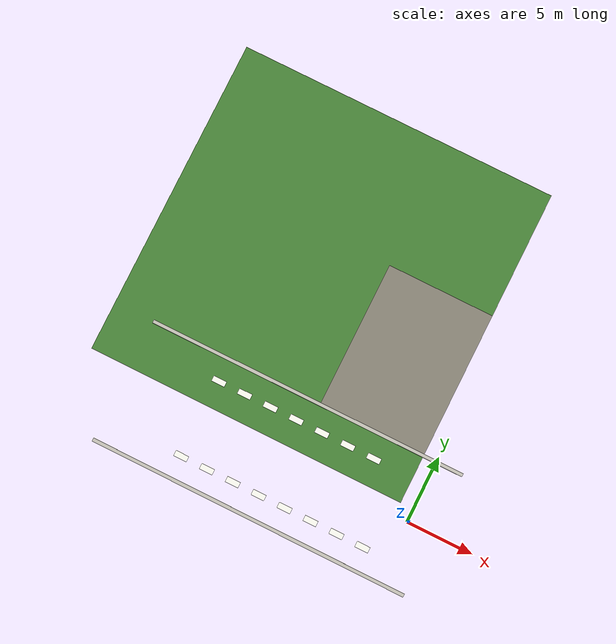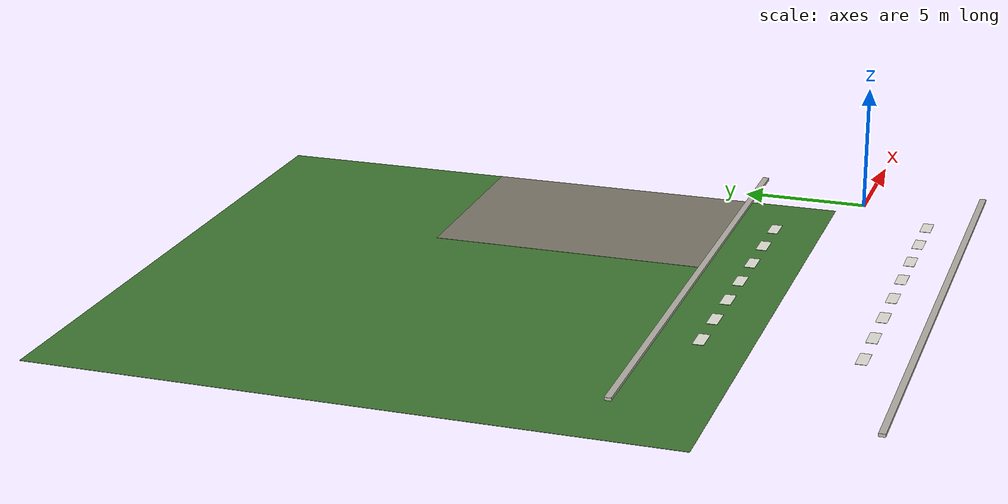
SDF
<sdf version="1.8">
 <world name="test_city">
  <model name="northwest_residential_lawn">
   <static>1</static>
   <pose>-13.000 13.000 0.003 0 0 0.000000</pose>
   <link name="link">
    <visual name="visual">
     <cast_shadows>0</cast_shadows>
     <geometry><box><size>24.000 24.000 0.012</size></box></geometry>
     <material>
      <ambient>0.26 0.48 0.20 1</ambient>
      <diffuse>0.26 0.48 0.20 1</diffuse>
      <specular>0.08 0.08 0.08 1</specular>
      <pbr>
       <metal>
        <albedo_map>model://urban_surface/materials/textures/grass_lawn.png</albedo_map>
        <roughness>0.95</roughness>
        <metalness>0.0</metalness>
       </metal>
      </pbr>
     </material>
    </visual>
   </link>
  </model>
  <model name="west_driveway_pavers">
   <static>1</static>
   <pose>-5.000 10.000 0.007 0 0 0.000000</pose>
   <link name="link">
    <visual name="visual">
     <cast_shadows>0</cast_shadows>
     <geometry><box><size>8.000 11.000 0.012</size></box></geometry>
     <material>
      <ambient>0.50 0.48 0.43 1</ambient>
      <diffuse>0.50 0.48 0.43 1</diffuse>
      <specular>0.08 0.08 0.08 1</specular>
      <pbr>
       <metal>
        <albedo_map>model://urban_surface/materials/textures/driveway_pavers.png</albedo_map>
        <roughness>0.88</roughness>
        <metalness>0.0</metalness>
       </metal>
      </pbr>
     </material>
    </visual>
   </link>
  </model>
  <model name="curb_n_ew_left">
   <static>1</static>
   <pose>-10.000 4.600 0.060 0 0 0.000000</pose>
   <link name="link">
    <collision name="collision"><geometry><box><size>24.000 0.250 0.120</size></box></geometry></collision>
    <visual name="visual">
     <cast_shadows>0</cast_shadows>
     <geometry><box><size>24.000 0.250 0.120</size></box></geometry>
     <material>
      <ambient>0.72 0.71 0.67 1</ambient>
      <diffuse>0.72 0.71 0.67 1</diffuse>
      <specular>0.08 0.08 0.08 1</specular>
      <pbr>
       <metal>
        <albedo_map>model://urban_surface/materials/textures/curb_concrete.png</albedo_map>
        <roughness>0.8</roughness>
        <metalness>0.0</metalness>
       </metal>
      </pbr>
     </material>
    </visual>
   </link>
  </model>
  <model name="curb_s_ew_left">
   <static>1</static>
   <pose>-10.000 -4.600 0.060 0 0 0.000000</pose>
   <link name="link">
    <collision name="collision"><geometry><box><size>24.000 0.250 0.120</size></box></geometry></collision>
    <visual name="visual">
     <cast_shadows>0</cast_shadows>
     <geometry><box><size>24.000 0.250 0.120</size></box></geometry>
     <material>
      <ambient>0.72 0.71 0.67 1</ambient>
      <diffuse>0.72 0.71 0.67 1</diffuse>
      <specular>0.08 0.08 0.08 1</specular>
      <pbr>
       <metal>
        <albedo_map>model://urban_surface/materials/textures/curb_concrete.png</albedo_map>
        <roughness>0.8</roughness>
        <metalness>0.0</metalness>
       </metal>
      </pbr>
     </material>
    </visual>
   </link>
  </model>
  <model name="west_crosswalk_stripe_0">
   <static>1</static>
   <pose>-16.000 -2.900 0.040 0 0 0.000000</pose>
   <link name="link">
    <visual name="visual">
     <cast_shadows>0</cast_shadows>
     <geometry><box><size>1.000 0.420 0.012</size></box></geometry>
     <material>
      <ambient>0.92 0.92 0.88 1</ambient>
      <diffuse>0.92 0.92 0.88 1</diffuse>
      <specular>0.05 0.05 0.05 1</specular>
      <pbr><metal><roughness>0.8</roughness><metalness>0</metalness></metal></pbr>
     </material>
    </visual>
   </link>
  </model>
  <model name="west_crosswalk_stripe_n_0">
   <static>1</static>
   <pose>-16.000 2.900 0.040 0 0 0.000000</pose>
   <link name="link">
    <visual name="visual">
     <cast_shadows>0</cast_shadows>
     <geometry><box><size>1.000 0.420 0.012</size></box></geometry>
     <material>
      <ambient>0.92 0.92 0.88 1</ambient>
      <diffuse>0.92 0.92 0.88 1</diffuse>
      <specular>0.05 0.05 0.05 1</specular>
      <pbr><metal><roughness>0.8</roughness><metalness>0</metalness></metal></pbr>
     </material>
    </visual>
   </link>
  </model>
  <model name="west_crosswalk_stripe_1">
   <static>1</static>
   <pose>-14.000 -2.900 0.040 0 0 0.000000</pose>
   <link name="link">
    <visual name="visual">
     <cast_shadows>0</cast_shadows>
     <geometry><box><size>1.000 0.420 0.012</size></box></geometry>
     <material>
      <ambient>0.92 0.92 0.88 1</ambient>
      <diffuse>0.92 0.92 0.88 1</diffuse>
      <specular>0.05 0.05 0.05 1</specular>
      <pbr><metal><roughness>0.8</roughness><metalness>0</metalness></metal></pbr>
     </material>
    </visual>
   </link>
  </model>
  <model name="west_crosswalk_stripe_n_1">
   <static>1</static>
   <pose>-14.000 2.900 0.040 0 0 0.000000</pose>
   <link name="link">
    <visual name="visual">
     <cast_shadows>0</cast_shadows>
     <geometry><box><size>1.000 0.420 0.012</size></box></geometry>
     <material>
      <ambient>0.92 0.92 0.88 1</ambient>
      <diffuse>0.92 0.92 0.88 1</diffuse>
      <specular>0.05 0.05 0.05 1</specular>
      <pbr><metal><roughness>0.8</roughness><metalness>0</metalness></metal></pbr>
     </material>
    </visual>
   </link>
  </model>
  <model name="west_crosswalk_stripe_2">
   <static>1</static>
   <pose>-12.000 -2.900 0.040 0 0 0.000000</pose>
   <link name="link">
    <visual name="visual">
     <cast_shadows>0</cast_shadows>
     <geometry><box><size>1.000 0.420 0.012</size></box></geometry>
     <material>
      <ambient>0.92 0.92 0.88 1</ambient>
      <diffuse>0.92 0.92 0.88 1</diffuse>
      <specular>0.05 0.05 0.05 1</specular>
      <pbr><metal><roughness>0.8</roughness><metalness>0</metalness></metal></pbr>
     </material>
    </visual>
   </link>
  </model>
  <model name="west_crosswalk_stripe_n_2">
   <static>1</static>
   <pose>-12.000 2.900 0.040 0 0 0.000000</pose>
   <link name="link">
    <visual name="visual">
     <cast_shadows>0</cast_shadows>
     <geometry><box><size>1.000 0.420 0.012</size></box></geometry>
     <material>
      <ambient>0.92 0.92 0.88 1</ambient>
      <diffuse>0.92 0.92 0.88 1</diffuse>
      <specular>0.05 0.05 0.05 1</specular>
      <pbr><metal><roughness>0.8</roughness><metalness>0</metalness></metal></pbr>
     </material>
    </visual>
   </link>
  </model>
  <model name="west_crosswalk_stripe_3">
   <static>1</static>
   <pose>-10.000 -2.900 0.040 0 0 0.000000</pose>
   <link name="link">
    <visual name="visual">
     <cast_shadows>0</cast_shadows>
     <geometry><box><size>1.000 0.420 0.012</size></box></geometry>
     <material>
      <ambient>0.92 0.92 0.88 1</ambient>
      <diffuse>0.92 0.92 0.88 1</diffuse>
      <specular>0.05 0.05 0.05 1</specular>
      <pbr><metal><roughness>0.8</roughness><metalness>0</metalness></metal></pbr>
     </material>
    </visual>
   </link>
  </model>
  <model name="west_crosswalk_stripe_n_3">
   <static>1</static>
   <pose>-10.000 2.900 0.040 0 0 0.000000</pose>
   <link name="link">
    <visual name="visual">
     <cast_shadows>0</cast_shadows>
     <geometry><box><size>1.000 0.420 0.012</size></box></geometry>
     <material>
      <ambient>0.92 0.92 0.88 1</ambient>
      <diffuse>0.92 0.92 0.88 1</diffuse>
      <specular>0.05 0.05 0.05 1</specular>
      <pbr><metal><roughness>0.8</roughness><metalness>0</metalness></metal></pbr>
     </material>
    </visual>
   </link>
  </model>
  <model name="west_crosswalk_stripe_4">
   <static>1</static>
   <pose>-8.000 -2.900 0.040 0 0 0.000000</pose>
   <link name="link">
    <visual name="visual">
     <cast_shadows>0</cast_shadows>
     <geometry><box><size>1.000 0.420 0.012</size></box></geometry>
     <material>
      <ambient>0.92 0.92 0.88 1</ambient>
      <diffuse>0.92 0.92 0.88 1</diffuse>
      <specular>0.05 0.05 0.05 1</specular>
      <pbr><metal><roughness>0.8</roughness><metalness>0</metalness></metal></pbr>
     </material>
    </visual>
   </link>
  </model>
  <model name="west_crosswalk_stripe_n_4">
   <static>1</static>
   <pose>-8.000 2.900 0.040 0 0 0.000000</pose>
   <link name="link">
    <visual name="visual">
     <cast_shadows>0</cast_shadows>
     <geometry><box><size>1.000 0.420 0.012</size></box></geometry>
     <material>
      <ambient>0.92 0.92 0.88 1</ambient>
      <diffuse>0.92 0.92 0.88 1</diffuse>
      <specular>0.05 0.05 0.05 1</specular>
      <pbr><metal><roughness>0.8</roughness><metalness>0</metalness></metal></pbr>
     </material>
    </visual>
   </link>
  </model>
  <model name="west_crosswalk_stripe_5">
   <static>1</static>
   <pose>-6.000 -2.900 0.040 0 0 0.000000</pose>
   <link name="link">
    <visual name="visual">
     <cast_shadows>0</cast_shadows>
     <geometry><box><size>1.000 0.420 0.012</size></box></geometry>
     <material>
      <ambient>0.92 0.92 0.88 1</ambient>
      <diffuse>0.92 0.92 0.88 1</diffuse>
      <specular>0.05 0.05 0.05 1</specular>
      <pbr><metal><roughness>0.8</roughness><metalness>0</metalness></metal></pbr>
     </material>
    </visual>
   </link>
  </model>
  <model name="west_crosswalk_stripe_n_5">
   <static>1</static>
   <pose>-6.000 2.900 0.040 0 0 0.000000</pose>
   <link name="link">
    <visual name="visual">
     <cast_shadows>0</cast_shadows>
     <geometry><box><size>1.000 0.420 0.012</size></box></geometry>
     <material>
      <ambient>0.92 0.92 0.88 1</ambient>
      <diffuse>0.92 0.92 0.88 1</diffuse>
      <specular>0.05 0.05 0.05 1</specular>
      <pbr><metal><roughness>0.8</roughness><metalness>0</metalness></metal></pbr>
     </material>
    </visual>
   </link>
  </model>
  <model name="west_crosswalk_stripe_6">
   <static>1</static>
   <pose>-4.000 -2.900 0.040 0 0 0.000000</pose>
   <link name="link">
    <visual name="visual">
     <cast_shadows>0</cast_shadows>
     <geometry><box><size>1.000 0.420 0.012</size></box></geometry>
     <material>
      <ambient>0.92 0.92 0.88 1</ambient>
      <diffuse>0.92 0.92 0.88 1</diffuse>
      <specular>0.05 0.05 0.05 1</specular>
      <pbr><metal><roughness>0.8</roughness><metalness>0</metalness></metal></pbr>
     </material>
    </visual>
   </link>
  </model>
  <model name="west_crosswalk_stripe_n_6">
   <static>1</static>
   <pose>-4.000 2.900 0.040 0 0 0.000000</pose>
   <link name="link">
    <visual name="visual">
     <cast_shadows>0</cast_shadows>
     <geometry><box><size>1.000 0.420 0.012</size></box></geometry>
     <material>
      <ambient>0.92 0.92 0.88 1</ambient>
      <diffuse>0.92 0.92 0.88 1</diffuse>
      <specular>0.05 0.05 0.05 1</specular>
      <pbr><metal><roughness>0.8</roughness><metalness>0</metalness></metal></pbr>
     </material>
    </visual>
   </link>
  </model>
  <model name="west_crosswalk_stripe_7">
   <static>1</static>
   <pose>-2.000 -2.900 0.040 0 0 0.000000</pose>
   <link name="link">
    <visual name="visual">
     <cast_shadows>0</cast_shadows>
     <geometry><box><size>1.000 0.420 0.012</size></box></geometry>
     <material>
      <ambient>0.92 0.92 0.88 1</ambient>
      <diffuse>0.92 0.92 0.88 1</diffuse>
      <specular>0.05 0.05 0.05 1</specular>
      <pbr><metal><roughness>0.8</roughness><metalness>0</metalness></metal></pbr>
     </material>
    </visual>
   </link>
  </model>
 </world>
</sdf>
